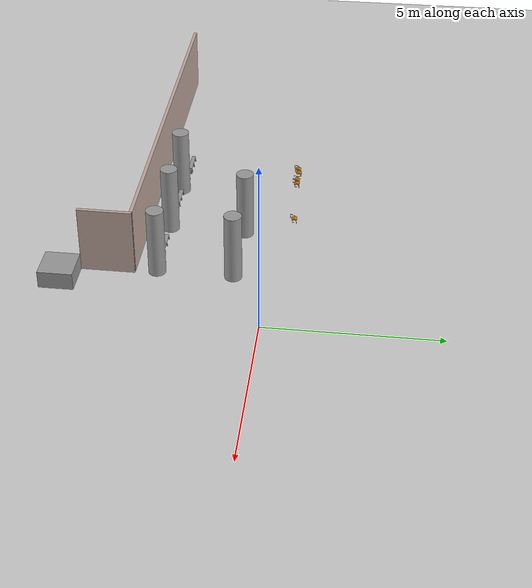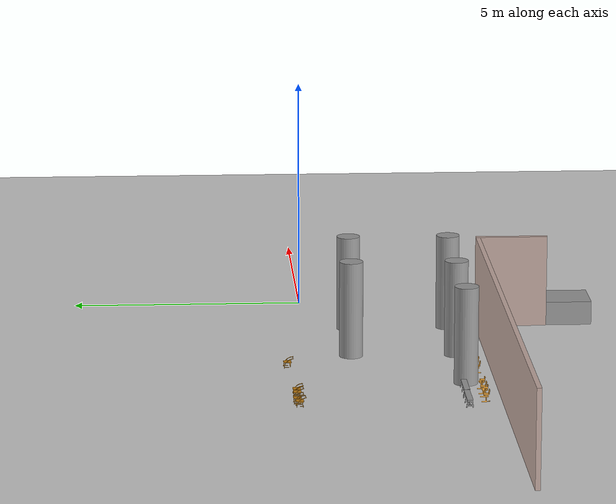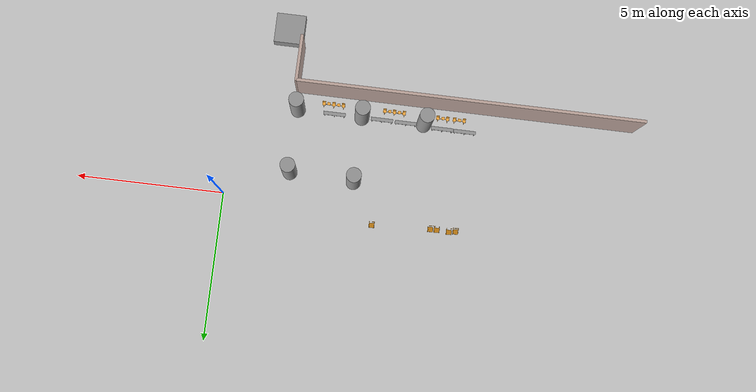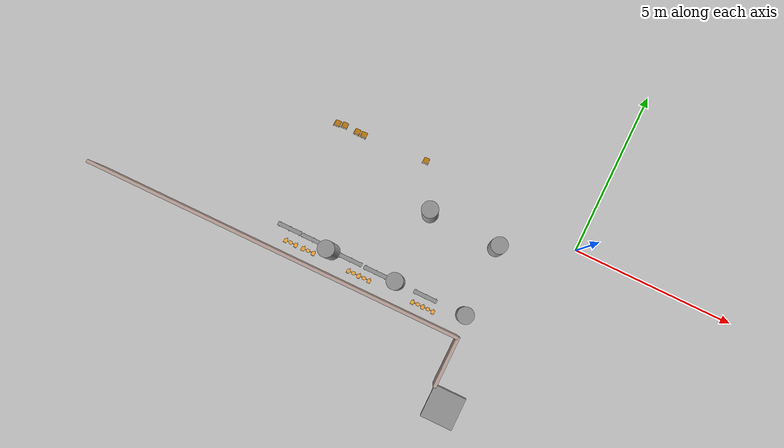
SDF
<sdf version="1.6">
 <world name="default">
  <model name="ground_plane">
   <static>1</static>
   <link name="link">
    <collision name="collision">
     <geometry><plane><normal>0 0 1</normal><size>100 100</size></plane></geometry>
     <surface>
      <contact><collide_bitmask>65535</collide_bitmask></contact>
      <friction><ode><mu>100</mu><mu2>50</mu2></ode></friction>
     </surface>
    </collision>
    <visual name="visual">
     <cast_shadows>0</cast_shadows>
     <geometry><plane><normal>0 0 1</normal><size>100 100</size></plane></geometry>
     <material>
      <script><uri>file://media/materials/scripts/gazebo.material</uri><name>Gazebo/Grey</name></script>
     </material>
    </visual>
   </link>
  </model>
  <model name="gedung_p">
   <pose>2.96636 -2.09069 0 0 -0 0</pose>
   <link name="Wall_199">
    <collision name="Wall_199_Collision">
     <geometry><box><size>1.55413 0.1 2</size></box></geometry>
     <pose>0 0 1 0 -0 0</pose>
    </collision>
    <visual name="Wall_199_Visual">
     <pose>0 0 1 0 -0 0</pose>
     <geometry><box><size>1.55413 0.1 2</size></box></geometry>
     <material>
      <script><uri>file://media/materials/scripts/gazebo.material</uri><name>Gazebo/Grey</name></script>
      <ambient>0.760784 0.662745 0.627451 1</ambient>
     </material>
     <meta><layer>0</layer></meta>
    </visual>
    <pose>-5.05601 -2.44719 0 0 -0 1.56461</pose>
   </link>
   <link name="Wall_227">
    <collision name="Wall_227_Collision">
     <geometry><box><size>0.320792 0.2 2</size></box></geometry>
     <pose>0 0 1 0 -0 0</pose>
    </collision>
    <visual name="Wall_227_Visual">
     <pose>0 0 1 0 -0 0</pose>
     <geometry><box><size>0.320792 0.2 2</size></box></geometry>
     <material>
      <script><uri>file://media/materials/scripts/gazebo.material</uri><name>Gazebo/Grey</name></script>
      <ambient>0.760784 0.662745 0.627451 1</ambient>
     </material>
     <meta><layer>0</layer></meta>
    </visual>
    <pose>-9.46431 -1.01152 0 0 -0 0.045423</pose>
   </link>
   <link name="Wall_229">
    <collision name="Wall_229_Collision">
     <geometry><box><size>0.342272 0.2 2</size></box></geometry>
     <pose>0 0 1 0 -0 0</pose>
    </collision>
    <visual name="Wall_229_Visual">
     <pose>0 0 1 0 -0 0</pose>
     <geometry><box><size>0.342272 0.2 2</size></box></geometry>
     <material>
      <script><uri>file://media/materials/scripts/gazebo.material</uri><name>Gazebo/Grey</name></script>
      <ambient>0.760784 0.662745 0.627451 1</ambient>
     </material>
     <meta><layer>0</layer></meta>
    </visual>
    <pose>-7.30446 -1.02245 0 0 -0 -3.10315</pose>
   </link>
   <link name="Wall_231">
    <collision name="Wall_231_Collision">
     <geometry><box><size>0.358571 0.2 2</size></box></geometry>
     <pose>0 0 1 0 -0 0</pose>
    </collision>
    <visual name="Wall_231_Visual">
     <pose>0 0 1 0 -0 0</pose>
     <geometry><box><size>0.358571 0.2 2</size></box></geometry>
     <material>
      <script><uri>file://media/materials/scripts/gazebo.material</uri><name>Gazebo/Grey</name></script>
      <ambient>0.760784 0.662745 0.627451 1</ambient>
     </material>
     <meta><layer>0</layer></meta>
    </visual>
    <pose>-5.16375 -1.01425 0 0 -0 3.14159</pose>
   </link>
   <link name="Wall_268">
    <collision name="Wall_268_Collision">
     <geometry><box><size>0.333889 0.2 2</size></box></geometry>
     <pose>0 0 1 0 -0 0</pose>
    </collision>
    <visual name="Wall_268_Visual">
     <pose>0 0 1 0 -0 0</pose>
     <geometry><box><size>0.333889 0.2 2</size></box></geometry>
     <material>
      <script><uri>file://media/materials/scripts/gazebo.material</uri><name>Gazebo/Grey</name></script>
      <ambient>0.760784 0.662745 0.627451 1</ambient>
     </material>
     <meta><layer>0</layer></meta>
    </visual>
    <pose>-7.29702 1.12605 0 0 -0 3.14159</pose>
   </link>
   <link name="Wall_270">
    <collision name="Wall_270_Collision">
     <geometry><box><size>0.31516 0.2 2</size></box></geometry>
     <pose>0 0 1 0 -0 0</pose>
    </collision>
    <visual name="Wall_270_Visual">
     <pose>0 0 1 0 -0 0</pose>
     <geometry><box><size>0.31516 0.2 2</size></box></geometry>
     <material>
      <script><uri>file://media/materials/scripts/gazebo.material</uri><name>Gazebo/Grey</name></script>
      <ambient>0.760784 0.662745 0.627451 1</ambient>
     </material>
     <meta><layer>0</layer></meta>
    </visual>
    <pose>-5.1548 1.12127 0 0 -0 0.083141</pose>
   </link>
   <link name="Wall_6">
    <collision name="Wall_6_Collision">
     <geometry><box><size>11.5 0.1 2</size></box></geometry>
     <pose>0 0 1 0 -0 0</pose>
    </collision>
    <visual name="Wall_6_Visual">
     <pose>0 0 1 0 -0 0</pose>
     <geometry><box><size>11.5 0.1 2</size></box></geometry>
     <material>
      <script><uri>file://media/materials/scripts/gazebo.material</uri><name>Gazebo/Grey</name></script>
      <ambient>0.760784 0.662745 0.627451 1</ambient>
     </material>
     <meta><layer>0</layer></meta>
    </visual>
    <pose>-10.8105 -1.71019 0 0 -0 0</pose>
   </link>
   <static>1</static>
  </model>
  <model name="tiang_besar_5">
   <link name="link_0">
    <inertial>
     <mass>1</mass>
     <inertia>
      <ixx>0.166667</ixx>
      <ixy>0</ixy>
      <ixz>0</ixz>
      <iyy>0.166667</iyy>
      <iyz>0</iyz>
      <izz>0.166667</izz>
     </inertia>
    </inertial>
    <pose>0.080543 -0.031124 0 0 -0 0</pose>
    <visual name="visual">
     <geometry>
      <mesh><uri>/home/thardi/Gazebo Objek/cylinder sedang.dae</uri><scale>1 1 1.15</scale></mesh>
     </geometry>
     <material>
      <lighting>1</lighting>
      <script><uri>file://media/materials/scripts/gazebo.material</uri><name>Gazebo/Grey</name></script>
      <shader type="vertex"><normal_map>__default__</normal_map></shader>
      <ambient>0.3 0.3 0.3 1</ambient>
      <diffuse>0.7 0.7 0.7 1</diffuse>
      <specular>0.01 0.01 0.01 1</specular>
      <emissive>0 0 0 1</emissive>
     </material>
    </visual>
    <collision name="collision">
     <geometry>
      <mesh><uri>/home/thardi/Gazebo Objek/cylinder sedang.dae</uri><scale>1 1 1.15</scale></mesh>
     </geometry>
     <surface>
      <friction>
       <ode><mu>1.15</mu><mu2>1</mu2><fdir1>0 0 0</fdir1><slip1>0</slip1><slip2>0</slip2></ode>
       <torsional>
        <coefficient>1</coefficient>
        <patch_radius>0</patch_radius>
        <surface_radius>0</surface_radius>
        <use_patch_radius>1</use_patch_radius>
        <ode><slip>0</slip></ode>
       </torsional>
      </friction>
      <bounce><restitution_coefficient>0</restitution_coefficient><threshold>1e+06</threshold></bounce>
      <contact>
       <collide_without_contact>0</collide_without_contact>
       <collide_without_contact_bitmask>1</collide_without_contact_bitmask>
       <collide_bitmask>1</collide_bitmask>
       <ode>
        <soft_cfm>0</soft_cfm>
        <soft_erp>0.2</soft_erp>
        <kp>1e+13</kp>
        <kd>1</kd>
        <max_vel>0.01</max_vel>
        <min_depth>0</min_depth>
       </ode>
       <bullet>
        <split_impulse>1</split_impulse>
        <split_impulse_penetration_threshold>-0.01</split_impulse_penetration_threshold>
        <soft_cfm>0</soft_cfm>
        <soft_erp>0.2</soft_erp>
        <kp>1e+13</kp>
        <kd>1</kd>
       </bullet>
      </contact>
     </surface>
    </collision>
   </link>
   <static>1</static>
   <pose>-6.55988 -3.10666 0 0 -0 0</pose>
  </model>
  <model name="tiang_besar_15">
   <link name="link_0">
    <inertial>
     <mass>1</mass>
     <inertia>
      <ixx>0.166667</ixx>
      <ixy>0</ixy>
      <ixz>0</ixz>
      <iyy>0.166667</iyy>
      <iyz>0</iyz>
      <izz>0.166667</izz>
     </inertia>
    </inertial>
    <pose>0.080543 -0.031124 0 0 -0 0</pose>
    <visual name="visual">
     <geometry>
      <mesh><uri>/home/thardi/Gazebo Objek/cylinder sedang.dae</uri><scale>1 1 1.15</scale></mesh>
     </geometry>
     <material>
      <lighting>1</lighting>
      <script><uri>file://media/materials/scripts/gazebo.material</uri><name>Gazebo/Grey</name></script>
      <shader type="vertex"><normal_map>__default__</normal_map></shader>
      <ambient>0.3 0.3 0.3 1</ambient>
      <diffuse>0.7 0.7 0.7 1</diffuse>
      <specular>0.01 0.01 0.01 1</specular>
      <emissive>0 0 0 1</emissive>
     </material>
    </visual>
    <collision name="collision">
     <geometry>
      <mesh><uri>/home/thardi/Gazebo Objek/cylinder sedang.dae</uri><scale>1 1 1.15</scale></mesh>
     </geometry>
     <surface>
      <friction>
       <ode><mu>1.15</mu><mu2>1</mu2><fdir1>0 0 0</fdir1><slip1>0</slip1><slip2>0</slip2></ode>
       <torsional>
        <coefficient>1</coefficient>
        <patch_radius>0</patch_radius>
        <surface_radius>0</surface_radius>
        <use_patch_radius>1</use_patch_radius>
        <ode><slip>0</slip></ode>
       </torsional>
      </friction>
      <bounce><restitution_coefficient>0</restitution_coefficient><threshold>1e+06</threshold></bounce>
      <contact>
       <collide_without_contact>0</collide_without_contact>
       <collide_without_contact_bitmask>1</collide_without_contact_bitmask>
       <collide_bitmask>1</collide_bitmask>
       <ode>
        <soft_cfm>0</soft_cfm>
        <soft_erp>0.2</soft_erp>
        <kp>1e+13</kp>
        <kd>1</kd>
        <max_vel>0.01</max_vel>
        <min_depth>0</min_depth>
       </ode>
       <bullet>
        <split_impulse>1</split_impulse>
        <split_impulse_penetration_threshold>-0.01</split_impulse_penetration_threshold>
        <soft_cfm>0</soft_cfm>
        <soft_erp>0.2</soft_erp>
        <kp>1e+13</kp>
        <kd>1</kd>
       </bullet>
      </contact>
     </surface>
    </collision>
   </link>
   <static>1</static>
   <pose>-4.44346 -3.09441 0 0 -0 0</pose>
  </model>
  <model name="tiang_besar_16">
   <link name="link_0">
    <inertial>
     <mass>1</mass>
     <inertia>
      <ixx>0.166667</ixx>
      <ixy>0</ixy>
      <ixz>0</ixz>
      <iyy>0.166667</iyy>
      <iyz>0</iyz>
      <izz>0.166667</izz>
     </inertia>
    </inertial>
    <pose>0.080543 -0.031124 0 0 -0 0</pose>
    <visual name="visual">
     <geometry>
      <mesh><uri>/home/thardi/Gazebo Objek/cylinder sedang.dae</uri><scale>1 1 1.15</scale></mesh>
     </geometry>
     <material>
      <lighting>1</lighting>
      <script><uri>file://media/materials/scripts/gazebo.material</uri><name>Gazebo/Grey</name></script>
      <shader type="vertex"><normal_map>__default__</normal_map></shader>
      <ambient>0.3 0.3 0.3 1</ambient>
      <diffuse>0.7 0.7 0.7 1</diffuse>
      <specular>0.01 0.01 0.01 1</specular>
      <emissive>0 0 0 1</emissive>
     </material>
    </visual>
    <collision name="collision">
     <geometry>
      <mesh><uri>/home/thardi/Gazebo Objek/cylinder sedang.dae</uri><scale>1 1 1.15</scale></mesh>
     </geometry>
     <surface>
      <friction>
       <ode><mu>1.15</mu><mu2>1</mu2><fdir1>0 0 0</fdir1><slip1>0</slip1><slip2>0</slip2></ode>
       <torsional>
        <coefficient>1</coefficient>
        <patch_radius>0</patch_radius>
        <surface_radius>0</surface_radius>
        <use_patch_radius>1</use_patch_radius>
        <ode><slip>0</slip></ode>
       </torsional>
      </friction>
      <bounce><restitution_coefficient>0</restitution_coefficient><threshold>1e+06</threshold></bounce>
      <contact>
       <collide_without_contact>0</collide_without_contact>
       <collide_without_contact_bitmask>1</collide_without_contact_bitmask>
       <collide_bitmask>1</collide_bitmask>
       <ode>
        <soft_cfm>0</soft_cfm>
        <soft_erp>0.2</soft_erp>
        <kp>1e+13</kp>
        <kd>1</kd>
        <max_vel>0.01</max_vel>
        <min_depth>0</min_depth>
       </ode>
       <bullet>
        <split_impulse>1</split_impulse>
        <split_impulse_penetration_threshold>-0.01</split_impulse_penetration_threshold>
        <soft_cfm>0</soft_cfm>
        <soft_erp>0.2</soft_erp>
        <kp>1e+13</kp>
        <kd>1</kd>
       </bullet>
      </contact>
     </surface>
    </collision>
   </link>
   <static>1</static>
   <pose>-4.41638 -0.867013 0 0 -0 0</pose>
  </model>
  <model name="tiang_besar_17">
   <link name="link_0">
    <inertial>
     <mass>1</mass>
     <inertia>
      <ixx>0.166667</ixx>
      <ixy>0</ixy>
      <ixz>0</ixz>
      <iyy>0.166667</iyy>
      <iyz>0</iyz>
      <izz>0.166667</izz>
     </inertia>
    </inertial>
    <pose>0.080543 -0.031124 0 0 -0 0</pose>
    <visual name="visual">
     <geometry>
      <mesh><uri>/home/thardi/Gazebo Objek/cylinder sedang.dae</uri><scale>1 1 1.15</scale></mesh>
     </geometry>
     <material>
      <lighting>1</lighting>
      <script><uri>file://media/materials/scripts/gazebo.material</uri><name>Gazebo/Grey</name></script>
      <shader type="vertex"><normal_map>__default__</normal_map></shader>
      <ambient>0.3 0.3 0.3 1</ambient>
      <diffuse>0.7 0.7 0.7 1</diffuse>
      <specular>0.01 0.01 0.01 1</specular>
      <emissive>0 0 0 1</emissive>
     </material>
    </visual>
    <collision name="collision">
     <geometry>
      <mesh><uri>/home/thardi/Gazebo Objek/cylinder sedang.dae</uri><scale>1 1 1.15</scale></mesh>
     </geometry>
     <surface>
      <friction>
       <ode><mu>1.15</mu><mu2>1</mu2><fdir1>0 0 0</fdir1><slip1>0</slip1><slip2>0</slip2></ode>
       <torsional>
        <coefficient>1</coefficient>
        <patch_radius>0</patch_radius>
        <surface_radius>0</surface_radius>
        <use_patch_radius>1</use_patch_radius>
        <ode><slip>0</slip></ode>
       </torsional>
      </friction>
      <bounce><restitution_coefficient>0</restitution_coefficient><threshold>1e+06</threshold></bounce>
      <contact>
       <collide_without_contact>0</collide_without_contact>
       <collide_without_contact_bitmask>1</collide_without_contact_bitmask>
       <collide_bitmask>1</collide_bitmask>
       <ode>
        <soft_cfm>0</soft_cfm>
        <soft_erp>0.2</soft_erp>
        <kp>1e+13</kp>
        <kd>1</kd>
        <max_vel>0.01</max_vel>
        <min_depth>0</min_depth>
       </ode>
       <bullet>
        <split_impulse>1</split_impulse>
        <split_impulse_penetration_threshold>-0.01</split_impulse_penetration_threshold>
        <soft_cfm>0</soft_cfm>
        <soft_erp>0.2</soft_erp>
        <kp>1e+13</kp>
        <kd>1</kd>
       </bullet>
      </contact>
     </surface>
    </collision>
   </link>
   <static>1</static>
   <pose>-2.23957 -0.938197 0 0 -0 0</pose>
  </model>
  <model name="tiang_besar_18">
   <link name="link_0">
    <inertial>
     <mass>1</mass>
     <inertia>
      <ixx>0.166667</ixx>
      <ixy>0</ixy>
      <ixz>0</ixz>
      <iyy>0.166667</iyy>
      <iyz>0</iyz>
      <izz>0.166667</izz>
     </inertia>
    </inertial>
    <pose>0.080543 -0.031124 0 0 -0 0</pose>
    <visual name="visual">
     <geometry>
      <mesh><uri>/home/thardi/Gazebo Objek/cylinder sedang.dae</uri><scale>1 1 1.15</scale></mesh>
     </geometry>
     <material>
      <lighting>1</lighting>
      <script><uri>file://media/materials/scripts/gazebo.material</uri><name>Gazebo/Grey</name></script>
      <shader type="vertex"><normal_map>__default__</normal_map></shader>
      <ambient>0.3 0.3 0.3 1</ambient>
      <diffuse>0.7 0.7 0.7 1</diffuse>
      <specular>0.01 0.01 0.01 1</specular>
      <emissive>0 0 0 1</emissive>
     </material>
    </visual>
    <collision name="collision">
     <geometry>
      <mesh><uri>/home/thardi/Gazebo Objek/cylinder sedang.dae</uri><scale>1 1 1.15</scale></mesh>
     </geometry>
     <surface>
      <friction>
       <ode><mu>1.15</mu><mu2>1</mu2><fdir1>0 0 0</fdir1><slip1>0</slip1><slip2>0</slip2></ode>
       <torsional>
        <coefficient>1</coefficient>
        <patch_radius>0</patch_radius>
        <surface_radius>0</surface_radius>
        <use_patch_radius>1</use_patch_radius>
        <ode><slip>0</slip></ode>
       </torsional>
      </friction>
      <bounce><restitution_coefficient>0</restitution_coefficient><threshold>1e+06</threshold></bounce>
      <contact>
       <collide_without_contact>0</collide_without_contact>
       <collide_without_contact_bitmask>1</collide_without_contact_bitmask>
       <collide_bitmask>1</collide_bitmask>
       <ode>
        <soft_cfm>0</soft_cfm>
        <soft_erp>0.2</soft_erp>
        <kp>1e+13</kp>
        <kd>1</kd>
        <max_vel>0.01</max_vel>
        <min_depth>0</min_depth>
       </ode>
       <bullet>
        <split_impulse>1</split_impulse>
        <split_impulse_penetration_threshold>-0.01</split_impulse_penetration_threshold>
        <soft_cfm>0</soft_cfm>
        <soft_erp>0.2</soft_erp>
        <kp>1e+13</kp>
        <kd>1</kd>
       </bullet>
      </contact>
     </surface>
    </collision>
   </link>
   <static>1</static>
   <pose>-2.24882 -3.1076 0 0 -0 0</pose>
  </model>
  <model name="kursi_putih_2">
   <link name="link_3">
    <inertial>
     <mass>1</mass>
     <inertia>
      <ixx>0.166667</ixx>
      <ixy>0</ixy>
      <ixz>0</ixz>
      <iyy>0.166667</iyy>
      <iyz>0</iyz>
      <izz>0.166667</izz>
     </inertia>
    </inertial>
    <visual name="visual">
     <geometry>
      <mesh><uri>/home/thardi/Gazebo Objek/kursi putih.dae</uri><scale>0.15 0.15 0.15</scale></mesh>
     </geometry>
     <material>
      <lighting>1</lighting>
      <script><uri>file://media/materials/scripts/gazebo.material</uri><name>Gazebo/Grey</name></script>
      <shader type="vertex"><normal_map>__default__</normal_map></shader>
      <ambient>1 1 1 1</ambient>
      <diffuse>1 1 1 1</diffuse>
      <specular>1 1 1 1</specular>
      <emissive>1 1 1 1</emissive>
     </material>
    </visual>
    <collision name="collision">
     <geometry>
      <mesh><uri>/home/thardi/Gazebo Objek/kursi putih.dae</uri><scale>0.15 0.15 0.15</scale></mesh>
     </geometry>
     <surface>
      <friction>
       <ode><mu>1</mu><mu2>1</mu2><fdir1>0 0 0</fdir1><slip1>0</slip1><slip2>0</slip2></ode>
       <torsional>
        <coefficient>1</coefficient>
        <patch_radius>0</patch_radius>
        <surface_radius>0</surface_radius>
        <use_patch_radius>1</use_patch_radius>
        <ode><slip>0</slip></ode>
       </torsional>
      </friction>
      <bounce><restitution_coefficient>0</restitution_coefficient><threshold>1e+06</threshold></bounce>
      <contact>
       <collide_without_contact>0</collide_without_contact>
       <collide_without_contact_bitmask>1</collide_without_contact_bitmask>
       <collide_bitmask>1</collide_bitmask>
       <ode>
        <soft_cfm>0</soft_cfm>
        <soft_erp>0.2</soft_erp>
        <kp>1e+13</kp>
        <kd>1</kd>
        <max_vel>0.01</max_vel>
        <min_depth>0</min_depth>
       </ode>
       <bullet>
        <split_impulse>1</split_impulse>
        <split_impulse_penetration_threshold>-0.01</split_impulse_penetration_threshold>
        <soft_cfm>0</soft_cfm>
        <soft_erp>0.2</soft_erp>
        <kp>1e+13</kp>
        <kd>1</kd>
       </bullet>
      </contact>
     </surface>
    </collision>
   </link>
   <static>1</static>
   <pose>-7.88934 -3.0566 0 0 -0 0</pose>
  </model>
  <model name="kursi_putih_3">
   <link name="link_3">
    <inertial>
     <mass>1</mass>
     <inertia>
      <ixx>0.166667</ixx>
      <ixy>0</ixy>
      <ixz>0</ixz>
      <iyy>0.166667</iyy>
      <iyz>0</iyz>
      <izz>0.166667</izz>
     </inertia>
    </inertial>
    <visual name="visual">
     <geometry>
      <mesh><uri>/home/thardi/Gazebo Objek/kursi putih.dae</uri><scale>0.15 0.15 0.15</scale></mesh>
     </geometry>
     <material>
      <lighting>1</lighting>
      <script><uri>file://media/materials/scripts/gazebo.material</uri><name>Gazebo/Grey</name></script>
      <shader type="vertex"><normal_map>__default__</normal_map></shader>
      <ambient>1 1 1 1</ambient>
      <diffuse>1 1 1 1</diffuse>
      <specular>1 1 1 1</specular>
      <emissive>1 1 1 1</emissive>
     </material>
    </visual>
    <collision name="collision">
     <geometry>
      <mesh><uri>/home/thardi/Gazebo Objek/kursi putih.dae</uri><scale>0.15 0.15 0.15</scale></mesh>
     </geometry>
     <surface>
      <friction>
       <ode><mu>1</mu><mu2>1</mu2><fdir1>0 0 0</fdir1><slip1>0</slip1><slip2>0</slip2></ode>
       <torsional>
        <coefficient>1</coefficient>
        <patch_radius>0</patch_radius>
        <surface_radius>0</surface_radius>
        <use_patch_radius>1</use_patch_radius>
        <ode><slip>0</slip></ode>
       </torsional>
      </friction>
      <bounce><restitution_coefficient>0</restitution_coefficient><threshold>1e+06</threshold></bounce>
      <contact>
       <collide_without_contact>0</collide_without_contact>
       <collide_without_contact_bitmask>1</collide_without_contact_bitmask>
       <collide_bitmask>1</collide_bitmask>
       <ode>
        <soft_cfm>0</soft_cfm>
        <soft_erp>0.2</soft_erp>
        <kp>1e+13</kp>
        <kd>1</kd>
        <max_vel>0.01</max_vel>
        <min_depth>0</min_depth>
       </ode>
       <bullet>
        <split_impulse>1</split_impulse>
        <split_impulse_penetration_threshold>-0.01</split_impulse_penetration_threshold>
        <soft_cfm>0</soft_cfm>
        <soft_erp>0.2</soft_erp>
        <kp>1e+13</kp>
        <kd>1</kd>
       </bullet>
      </contact>
     </surface>
    </collision>
   </link>
   <static>1</static>
   <pose>-7.12226 -3.06473 0 0 -0 0</pose>
  </model>
  <model name="kursi_putih_4">
   <link name="link_3">
    <inertial>
     <mass>1</mass>
     <inertia>
      <ixx>0.166667</ixx>
      <ixy>0</ixy>
      <ixz>0</ixz>
      <iyy>0.166667</iyy>
      <iyz>0</iyz>
      <izz>0.166667</izz>
     </inertia>
    </inertial>
    <visual name="visual">
     <geometry>
      <mesh><uri>/home/thardi/Gazebo Objek/kursi putih.dae</uri><scale>0.15 0.15 0.15</scale></mesh>
     </geometry>
     <material>
      <lighting>1</lighting>
      <script><uri>file://media/materials/scripts/gazebo.material</uri><name>Gazebo/Grey</name></script>
      <shader type="vertex"><normal_map>__default__</normal_map></shader>
      <ambient>1 1 1 1</ambient>
      <diffuse>1 1 1 1</diffuse>
      <specular>1 1 1 1</specular>
      <emissive>1 1 1 1</emissive>
     </material>
    </visual>
    <collision name="collision">
     <geometry>
      <mesh><uri>/home/thardi/Gazebo Objek/kursi putih.dae</uri><scale>0.15 0.15 0.15</scale></mesh>
     </geometry>
     <surface>
      <friction>
       <ode><mu>1</mu><mu2>1</mu2><fdir1>0 0 0</fdir1><slip1>0</slip1><slip2>0</slip2></ode>
       <torsional>
        <coefficient>1</coefficient>
        <patch_radius>0</patch_radius>
        <surface_radius>0</surface_radius>
        <use_patch_radius>1</use_patch_radius>
        <ode><slip>0</slip></ode>
       </torsional>
      </friction>
      <bounce><restitution_coefficient>0</restitution_coefficient><threshold>1e+06</threshold></bounce>
      <contact>
       <collide_without_contact>0</collide_without_contact>
       <collide_without_contact_bitmask>1</collide_without_contact_bitmask>
       <collide_bitmask>1</collide_bitmask>
       <ode>
        <soft_cfm>0</soft_cfm>
        <soft_erp>0.2</soft_erp>
        <kp>1e+13</kp>
        <kd>1</kd>
        <max_vel>0.01</max_vel>
        <min_depth>0</min_depth>
       </ode>
       <bullet>
        <split_impulse>1</split_impulse>
        <split_impulse_penetration_threshold>-0.01</split_impulse_penetration_threshold>
        <soft_cfm>0</soft_cfm>
        <soft_erp>0.2</soft_erp>
        <kp>1e+13</kp>
        <kd>1</kd>
       </bullet>
      </contact>
     </surface>
    </collision>
   </link>
   <static>1</static>
   <pose>-5.86954 -3.12067 0 0 -0 0</pose>
  </model>
  <model name="kursi_putih_5">
   <link name="link_3">
    <inertial>
     <mass>1</mass>
     <inertia>
      <ixx>0.166667</ixx>
      <ixy>0</ixy>
      <ixz>0</ixz>
      <iyy>0.166667</iyy>
      <iyz>0</iyz>
      <izz>0.166667</izz>
     </inertia>
    </inertial>
    <visual name="visual">
     <geometry>
      <mesh><uri>/home/thardi/Gazebo Objek/kursi putih.dae</uri><scale>0.15 0.15 0.15</scale></mesh>
     </geometry>
     <material>
      <lighting>1</lighting>
      <script><uri>file://media/materials/scripts/gazebo.material</uri><name>Gazebo/Grey</name></script>
      <shader type="vertex"><normal_map>__default__</normal_map></shader>
      <ambient>1 1 1 1</ambient>
      <diffuse>1 1 1 1</diffuse>
      <specular>1 1 1 1</specular>
      <emissive>1 1 1 1</emissive>
     </material>
    </visual>
    <collision name="collision">
     <geometry>
      <mesh><uri>/home/thardi/Gazebo Objek/kursi putih.dae</uri><scale>0.15 0.15 0.15</scale></mesh>
     </geometry>
     <surface>
      <friction>
       <ode><mu>1</mu><mu2>1</mu2><fdir1>0 0 0</fdir1><slip1>0</slip1><slip2>0</slip2></ode>
       <torsional>
        <coefficient>1</coefficient>
        <patch_radius>0</patch_radius>
        <surface_radius>0</surface_radius>
        <use_patch_radius>1</use_patch_radius>
        <ode><slip>0</slip></ode>
       </torsional>
      </friction>
      <bounce><restitution_coefficient>0</restitution_coefficient><threshold>1e+06</threshold></bounce>
      <contact>
       <collide_without_contact>0</collide_without_contact>
       <collide_without_contact_bitmask>1</collide_without_contact_bitmask>
       <collide_bitmask>1</collide_bitmask>
       <ode>
        <soft_cfm>0</soft_cfm>
        <soft_erp>0.2</soft_erp>
        <kp>1e+13</kp>
        <kd>1</kd>
        <max_vel>0.01</max_vel>
        <min_depth>0</min_depth>
       </ode>
       <bullet>
        <split_impulse>1</split_impulse>
        <split_impulse_penetration_threshold>-0.01</split_impulse_penetration_threshold>
        <soft_cfm>0</soft_cfm>
        <soft_erp>0.2</soft_erp>
        <kp>1e+13</kp>
        <kd>1</kd>
       </bullet>
      </contact>
     </surface>
    </collision>
   </link>
   <static>1</static>
   <pose>-5.04935 -3.13192 0 0 -0 0</pose>
  </model>
  <model name="kursi_putih_6">
   <link name="link_3">
    <inertial>
     <mass>1</mass>
     <inertia>
      <ixx>0.166667</ixx>
      <ixy>0</ixy>
      <ixz>0</ixz>
      <iyy>0.166667</iyy>
      <iyz>0</iyz>
      <izz>0.166667</izz>
     </inertia>
    </inertial>
    <visual name="visual">
     <geometry>
      <mesh><uri>/home/thardi/Gazebo Objek/kursi putih.dae</uri><scale>0.15 0.15 0.15</scale></mesh>
     </geometry>
     <material>
      <lighting>1</lighting>
      <script><uri>file://media/materials/scripts/gazebo.material</uri><name>Gazebo/Grey</name></script>
      <shader type="vertex"><normal_map>__default__</normal_map></shader>
      <ambient>1 1 1 1</ambient>
      <diffuse>1 1 1 1</diffuse>
      <specular>1 1 1 1</specular>
      <emissive>1 1 1 1</emissive>
     </material>
    </visual>
    <collision name="collision">
     <geometry>
      <mesh><uri>/home/thardi/Gazebo Objek/kursi putih.dae</uri><scale>0.15 0.15 0.15</scale></mesh>
     </geometry>
     <surface>
      <friction>
       <ode><mu>1</mu><mu2>1</mu2><fdir1>0 0 0</fdir1><slip1>0</slip1><slip2>0</slip2></ode>
       <torsional>
        <coefficient>1</coefficient>
        <patch_radius>0</patch_radius>
        <surface_radius>0</surface_radius>
        <use_patch_radius>1</use_patch_radius>
        <ode><slip>0</slip></ode>
       </torsional>
      </friction>
      <bounce><restitution_coefficient>0</restitution_coefficient><threshold>1e+06</threshold></bounce>
      <contact>
       <collide_without_contact>0</collide_without_contact>
       <collide_without_contact_bitmask>1</collide_without_contact_bitmask>
       <collide_bitmask>1</collide_bitmask>
       <ode>
        <soft_cfm>0</soft_cfm>
        <soft_erp>0.2</soft_erp>
        <kp>1e+13</kp>
        <kd>1</kd>
        <max_vel>0.01</max_vel>
        <min_depth>0</min_depth>
       </ode>
       <bullet>
        <split_impulse>1</split_impulse>
        <split_impulse_penetration_threshold>-0.01</split_impulse_penetration_threshold>
        <soft_cfm>0</soft_cfm>
        <soft_erp>0.2</soft_erp>
        <kp>1e+13</kp>
        <kd>1</kd>
       </bullet>
      </contact>
     </surface>
    </collision>
   </link>
   <static>1</static>
   <pose>-3.42111 -3.13883 0 0 -0 0</pose>
  </model>
  <model name="kursi_sambung_3">
   <link name="link_5">
    <inertial>
     <mass>1</mass>
     <inertia>
      <ixx>0.166667</ixx>
      <ixy>0</ixy>
      <ixz>0</ixz>
      <iyy>0.166667</iyy>
      <iyz>0</iyz>
      <izz>0.166667</izz>
     </inertia>
    </inertial>
    <visual name="visual">
     <geometry>
      <mesh><uri>/home/thardi/Gazebo Objek/kursi sambung 3.dae</uri><scale>0.07 0.07 0.07</scale></mesh>
     </geometry>
     <material>
      <lighting>1</lighting>
      <script><uri>file://media/materials/scripts/gazebo.material</uri><name>Gazebo/Grey</name></script>
      <shader type="vertex"><normal_map>__default__</normal_map></shader>
      <ambient>0.988 0.686 0.243 1</ambient>
      <diffuse>0.988 0.686 0.243 1</diffuse>
      <specular>0.988 0.686 0.243 1</specular>
      <emissive>0.988 0.686 0.243 1</emissive>
     </material>
    </visual>
    <collision name="collision">
     <geometry>
      <mesh><uri>/home/thardi/Gazebo Objek/kursi sambung 3.dae</uri><scale>0.07 0.07 0.07</scale></mesh>
     </geometry>
     <surface>
      <friction>
       <ode><mu>1</mu><mu2>1</mu2><fdir1>0 0 0</fdir1><slip1>0</slip1><slip2>0</slip2></ode>
       <torsional>
        <coefficient>1</coefficient>
        <patch_radius>0</patch_radius>
        <surface_radius>0</surface_radius>
        <use_patch_radius>1</use_patch_radius>
        <ode><slip>0</slip></ode>
       </torsional>
      </friction>
      <bounce><restitution_coefficient>0</restitution_coefficient><threshold>1e+06</threshold></bounce>
      <contact>
       <collide_without_contact>0</collide_without_contact>
       <collide_without_contact_bitmask>1</collide_without_contact_bitmask>
       <collide_bitmask>1</collide_bitmask>
       <ode>
        <soft_cfm>0</soft_cfm>
        <soft_erp>0.2</soft_erp>
        <kp>1e+13</kp>
        <kd>1</kd>
        <max_vel>0.01</max_vel>
        <min_depth>0</min_depth>
       </ode>
       <bullet>
        <split_impulse>1</split_impulse>
        <split_impulse_penetration_threshold>-0.01</split_impulse_penetration_threshold>
        <soft_cfm>0</soft_cfm>
        <soft_erp>0.2</soft_erp>
        <kp>1e+13</kp>
        <kd>1</kd>
       </bullet>
      </contact>
     </surface>
    </collision>
   </link>
   <static>1</static>
   <pose>-3.74591 -3.35812 0 0 -0 0</pose>
  </model>
  <model name="kursi_sambung_3_0">
   <link name="link_5">
    <inertial>
     <mass>1</mass>
     <inertia>
      <ixx>0.166667</ixx>
      <ixy>0</ixy>
      <ixz>0</ixz>
      <iyy>0.166667</iyy>
      <iyz>0</iyz>
      <izz>0.166667</izz>
     </inertia>
    </inertial>
    <visual name="visual">
     <geometry>
      <mesh><uri>/home/thardi/Gazebo Objek/kursi sambung 3.dae</uri><scale>0.07 0.07 0.07</scale></mesh>
     </geometry>
     <material>
      <lighting>1</lighting>
      <script><uri>file://media/materials/scripts/gazebo.material</uri><name>Gazebo/Grey</name></script>
      <shader type="vertex"><normal_map>__default__</normal_map></shader>
      <ambient>0.988 0.686 0.243 1</ambient>
      <diffuse>0.988 0.686 0.243 1</diffuse>
      <specular>0.988 0.686 0.243 1</specular>
      <emissive>0.988 0.686 0.243 1</emissive>
     </material>
    </visual>
    <collision name="collision">
     <geometry>
      <mesh><uri>/home/thardi/Gazebo Objek/kursi sambung 3.dae</uri><scale>0.07 0.07 0.07</scale></mesh>
     </geometry>
     <surface>
      <friction>
       <ode><mu>1</mu><mu2>1</mu2><fdir1>0 0 0</fdir1><slip1>0</slip1><slip2>0</slip2></ode>
       <torsional>
        <coefficient>1</coefficient>
        <patch_radius>0</patch_radius>
        <surface_radius>0</surface_radius>
        <use_patch_radius>1</use_patch_radius>
        <ode><slip>0</slip></ode>
       </torsional>
      </friction>
      <bounce><restitution_coefficient>0</restitution_coefficient><threshold>1e+06</threshold></bounce>
      <contact>
       <collide_without_contact>0</collide_without_contact>
       <collide_without_contact_bitmask>1</collide_without_contact_bitmask>
       <collide_bitmask>1</collide_bitmask>
       <ode>
        <soft_cfm>0</soft_cfm>
        <soft_erp>0.2</soft_erp>
        <kp>1e+13</kp>
        <kd>1</kd>
        <max_vel>0.01</max_vel>
        <min_depth>0</min_depth>
       </ode>
       <bullet>
        <split_impulse>1</split_impulse>
        <split_impulse_penetration_threshold>-0.01</split_impulse_penetration_threshold>
        <soft_cfm>0</soft_cfm>
        <soft_erp>0.2</soft_erp>
        <kp>1e+13</kp>
        <kd>1</kd>
       </bullet>
      </contact>
     </surface>
    </collision>
   </link>
   <static>1</static>
   <pose>-5.83206 -3.34663 0 0 -0 0</pose>
  </model>
  <model name="kursi_sambung_2">
   <link name="link_4">
    <inertial>
     <mass>1</mass>
     <inertia>
      <ixx>0.166667</ixx>
      <ixy>0</ixy>
      <ixz>0</ixz>
      <iyy>0.166667</iyy>
      <iyz>0</iyz>
      <izz>0.166667</izz>
     </inertia>
    </inertial>
    <visual name="visual">
     <geometry>
      <mesh><uri>/home/thardi/Gazebo Objek/kursi sambung 2.dae</uri><scale>0.07 0.07 0.07</scale></mesh>
     </geometry>
     <material>
      <lighting>1</lighting>
      <script><uri>file://media/materials/scripts/gazebo.material</uri><name>Gazebo/Grey</name></script>
      <shader type="vertex"><normal_map>__default__</normal_map></shader>
      <ambient>0.988 0.686 0.243 1</ambient>
      <diffuse>0.988 0.686 0.243 1</diffuse>
      <specular>0.988 0.686 0.243 1</specular>
      <emissive>0.988 0.686 0.243 1</emissive>
     </material>
    </visual>
    <collision name="collision">
     <geometry>
      <mesh><uri>/home/thardi/Gazebo Objek/kursi sambung 2.dae</uri><scale>0.07 0.07 0.07</scale></mesh>
     </geometry>
     <surface>
      <friction>
       <ode><mu>1</mu><mu2>1</mu2><fdir1>0 0 0</fdir1><slip1>0</slip1><slip2>0</slip2></ode>
       <torsional>
        <coefficient>1</coefficient>
        <patch_radius>0</patch_radius>
        <surface_radius>0</surface_radius>
        <use_patch_radius>1</use_patch_radius>
        <ode><slip>0</slip></ode>
       </torsional>
      </friction>
      <bounce><restitution_coefficient>0</restitution_coefficient><threshold>1e+06</threshold></bounce>
      <contact>
       <collide_without_contact>0</collide_without_contact>
       <collide_without_contact_bitmask>1</collide_without_contact_bitmask>
       <collide_bitmask>1</collide_bitmask>
       <ode>
        <soft_cfm>0</soft_cfm>
        <soft_erp>0.2</soft_erp>
        <kp>1e+13</kp>
        <kd>1</kd>
        <max_vel>0.01</max_vel>
        <min_depth>0</min_depth>
       </ode>
       <bullet>
        <split_impulse>1</split_impulse>
        <split_impulse_penetration_threshold>-0.01</split_impulse_penetration_threshold>
        <soft_cfm>0</soft_cfm>
        <soft_erp>0.2</soft_erp>
        <kp>1e+13</kp>
        <kd>1</kd>
       </bullet>
      </contact>
     </surface>
    </collision>
   </link>
   <static>1</static>
   <pose>-7.32225 -3.32548 0 0 -0 0</pose>
  </model>
  <model name="kursi_sambung_2_0">
   <link name="link_4">
    <inertial>
     <mass>1</mass>
     <inertia>
      <ixx>0.166667</ixx>
      <ixy>0</ixy>
      <ixz>0</ixz>
      <iyy>0.166667</iyy>
      <iyz>0</iyz>
      <izz>0.166667</izz>
     </inertia>
    </inertial>
    <visual name="visual">
     <geometry>
      <mesh><uri>/home/thardi/Gazebo Objek/kursi sambung 2.dae</uri><scale>0.07 0.07 0.07</scale></mesh>
     </geometry>
     <material>
      <lighting>1</lighting>
      <script><uri>file://media/materials/scripts/gazebo.material</uri><name>Gazebo/Grey</name></script>
      <shader type="vertex"><normal_map>__default__</normal_map></shader>
      <ambient>0.988 0.686 0.243 1</ambient>
      <diffuse>0.988 0.686 0.243 1</diffuse>
      <specular>0.988 0.686 0.243 1</specular>
      <emissive>0.988 0.686 0.243 1</emissive>
     </material>
    </visual>
    <collision name="collision">
     <geometry>
      <mesh><uri>/home/thardi/Gazebo Objek/kursi sambung 2.dae</uri><scale>0.07 0.07 0.07</scale></mesh>
     </geometry>
     <surface>
      <friction>
       <ode><mu>1</mu><mu2>1</mu2><fdir1>0 0 0</fdir1><slip1>0</slip1><slip2>0</slip2></ode>
       <torsional>
        <coefficient>1</coefficient>
        <patch_radius>0</patch_radius>
        <surface_radius>0</surface_radius>
        <use_patch_radius>1</use_patch_radius>
        <ode><slip>0</slip></ode>
       </torsional>
      </friction>
      <bounce><restitution_coefficient>0</restitution_coefficient><threshold>1e+06</threshold></bounce>
      <contact>
       <collide_without_contact>0</collide_without_contact>
       <collide_without_contact_bitmask>1</collide_without_contact_bitmask>
       <collide_bitmask>1</collide_bitmask>
       <ode>
        <soft_cfm>0</soft_cfm>
        <soft_erp>0.2</soft_erp>
        <kp>1e+13</kp>
        <kd>1</kd>
        <max_vel>0.01</max_vel>
        <min_depth>0</min_depth>
       </ode>
       <bullet>
        <split_impulse>1</split_impulse>
        <split_impulse_penetration_threshold>-0.01</split_impulse_penetration_threshold>
        <soft_cfm>0</soft_cfm>
        <soft_erp>0.2</soft_erp>
        <kp>1e+13</kp>
        <kd>1</kd>
       </bullet>
      </contact>
     </surface>
    </collision>
   </link>
   <static>1</static>
   <pose>-7.88868 -3.33006 0 0 -0 0</pose>
  </model>
  <model name="kursi_kantin_clone_5">
   <link name="link_1">
    <inertial>
     <mass>1</mass>
     <inertia>
      <ixx>0.166667</ixx>
      <ixy>0</ixy>
      <ixz>0</ixz>
      <iyy>0.166667</iyy>
      <iyz>0</iyz>
      <izz>0.166667</izz>
     </inertia>
    </inertial>
    <visual name="visual">
     <geometry>
      <mesh><uri>/home/thardi/Gazebo Objek/kursi kantin.dae</uri><scale>0.2 0.2 0.2</scale></mesh>
     </geometry>
     <material>
      <lighting>1</lighting>
      <script><uri>file://media/materials/scripts/gazebo.material</uri><name>Gazebo/Grey</name></script>
      <shader type="vertex"><normal_map>__default__</normal_map></shader>
      <ambient>0.757 0.49 0.067 1</ambient>
      <diffuse>0.757 0.49 0.067 1</diffuse>
      <specular>0.757 0.49 0.067 1</specular>
      <emissive>0.757 0.49 0.067 1</emissive>
     </material>
    </visual>
    <collision name="collision">
     <geometry>
      <mesh><uri>/home/thardi/Gazebo Objek/kursi kantin.dae</uri><scale>0.2 0.2 0.2</scale></mesh>
     </geometry>
     <surface>
      <friction>
       <ode><mu>1</mu><mu2>1</mu2><fdir1>0 0 0</fdir1><slip1>0</slip1><slip2>0</slip2></ode>
       <torsional>
        <coefficient>1</coefficient>
        <patch_radius>0</patch_radius>
        <surface_radius>0</surface_radius>
        <use_patch_radius>1</use_patch_radius>
        <ode><slip>0</slip></ode>
       </torsional>
      </friction>
      <bounce><restitution_coefficient>0</restitution_coefficient><threshold>1e+06</threshold></bounce>
      <contact>
       <collide_without_contact>0</collide_without_contact>
       <collide_without_contact_bitmask>1</collide_without_contact_bitmask>
       <collide_bitmask>1</collide_bitmask>
       <ode>
        <soft_cfm>0</soft_cfm>
        <soft_erp>0.2</soft_erp>
        <kp>1e+13</kp>
        <kd>1</kd>
        <max_vel>0.01</max_vel>
        <min_depth>0</min_depth>
       </ode>
       <bullet>
        <split_impulse>1</split_impulse>
        <split_impulse_penetration_threshold>-0.01</split_impulse_penetration_threshold>
        <soft_cfm>0</soft_cfm>
        <soft_erp>0.2</soft_erp>
        <kp>1e+13</kp>
        <kd>1</kd>
       </bullet>
      </contact>
     </surface>
    </collision>
   </link>
   <static>1</static>
   <pose>-7.96205 0.369837 0 0 -0 1.61354</pose>
  </model>
  <model name="kursi_kantin_clone_6">
   <link name="link_1">
    <inertial>
     <mass>1</mass>
     <inertia>
      <ixx>0.166667</ixx>
      <ixy>0</ixy>
      <ixz>0</ixz>
      <iyy>0.166667</iyy>
      <iyz>0</iyz>
      <izz>0.166667</izz>
     </inertia>
    </inertial>
    <visual name="visual">
     <geometry>
      <mesh><uri>/home/thardi/Gazebo Objek/kursi kantin.dae</uri><scale>0.2 0.2 0.2</scale></mesh>
     </geometry>
     <material>
      <lighting>1</lighting>
      <script><uri>file://media/materials/scripts/gazebo.material</uri><name>Gazebo/Grey</name></script>
      <shader type="vertex"><normal_map>__default__</normal_map></shader>
      <ambient>0.757 0.49 0.067 1</ambient>
      <diffuse>0.757 0.49 0.067 1</diffuse>
      <specular>0.757 0.49 0.067 1</specular>
      <emissive>0.757 0.49 0.067 1</emissive>
     </material>
    </visual>
    <collision name="collision">
     <geometry>
      <mesh><uri>/home/thardi/Gazebo Objek/kursi kantin.dae</uri><scale>0.2 0.2 0.2</scale></mesh>
     </geometry>
     <surface>
      <friction>
       <ode><mu>1</mu><mu2>1</mu2><fdir1>0 0 0</fdir1><slip1>0</slip1><slip2>0</slip2></ode>
       <torsional>
        <coefficient>1</coefficient>
        <patch_radius>0</patch_radius>
        <surface_radius>0</surface_radius>
        <use_patch_radius>1</use_patch_radius>
        <ode><slip>0</slip></ode>
       </torsional>
      </friction>
      <bounce><restitution_coefficient>0</restitution_coefficient><threshold>1e+06</threshold></bounce>
      <contact>
       <collide_without_contact>0</collide_without_contact>
       <collide_without_contact_bitmask>1</collide_without_contact_bitmask>
       <collide_bitmask>1</collide_bitmask>
       <ode>
        <soft_cfm>0</soft_cfm>
        <soft_erp>0.2</soft_erp>
        <kp>1e+13</kp>
        <kd>1</kd>
        <max_vel>0.01</max_vel>
        <min_depth>0</min_depth>
       </ode>
       <bullet>
        <split_impulse>1</split_impulse>
        <split_impulse_penetration_threshold>-0.01</split_impulse_penetration_threshold>
        <soft_cfm>0</soft_cfm>
        <soft_erp>0.2</soft_erp>
        <kp>1e+13</kp>
        <kd>1</kd>
       </bullet>
      </contact>
     </surface>
    </collision>
   </link>
   <static>1</static>
   <pose>-7.74021 0.406537 0 0 -0 1.61354</pose>
  </model>
  <model name="kursi_kantin_clone_7">
   <link name="link_1">
    <inertial>
     <mass>1</mass>
     <inertia>
      <ixx>0.166667</ixx>
      <ixy>0</ixy>
      <ixz>0</ixz>
      <iyy>0.166667</iyy>
      <iyz>0</iyz>
      <izz>0.166667</izz>
     </inertia>
    </inertial>
    <visual name="visual">
     <geometry>
      <mesh><uri>/home/thardi/Gazebo Objek/kursi kantin.dae</uri><scale>0.2 0.2 0.2</scale></mesh>
     </geometry>
     <material>
      <lighting>1</lighting>
      <script><uri>file://media/materials/scripts/gazebo.material</uri><name>Gazebo/Grey</name></script>
      <shader type="vertex"><normal_map>__default__</normal_map></shader>
      <ambient>0.757 0.49 0.067 1</ambient>
      <diffuse>0.757 0.49 0.067 1</diffuse>
      <specular>0.757 0.49 0.067 1</specular>
      <emissive>0.757 0.49 0.067 1</emissive>
     </material>
    </visual>
    <collision name="collision">
     <geometry>
      <mesh><uri>/home/thardi/Gazebo Objek/kursi kantin.dae</uri><scale>0.2 0.2 0.2</scale></mesh>
     </geometry>
     <surface>
      <friction>
       <ode><mu>1</mu><mu2>1</mu2><fdir1>0 0 0</fdir1><slip1>0</slip1><slip2>0</slip2></ode>
       <torsional>
        <coefficient>1</coefficient>
        <patch_radius>0</patch_radius>
        <surface_radius>0</surface_radius>
        <use_patch_radius>1</use_patch_radius>
        <ode><slip>0</slip></ode>
       </torsional>
      </friction>
      <bounce><restitution_coefficient>0</restitution_coefficient><threshold>1e+06</threshold></bounce>
      <contact>
       <collide_without_contact>0</collide_without_contact>
       <collide_without_contact_bitmask>1</collide_without_contact_bitmask>
       <collide_bitmask>1</collide_bitmask>
       <ode>
        <soft_cfm>0</soft_cfm>
        <soft_erp>0.2</soft_erp>
        <kp>1e+13</kp>
        <kd>1</kd>
        <max_vel>0.01</max_vel>
        <min_depth>0</min_depth>
       </ode>
       <bullet>
        <split_impulse>1</split_impulse>
        <split_impulse_penetration_threshold>-0.01</split_impulse_penetration_threshold>
        <soft_cfm>0</soft_cfm>
        <soft_erp>0.2</soft_erp>
        <kp>1e+13</kp>
        <kd>1</kd>
       </bullet>
      </contact>
     </surface>
    </collision>
   </link>
   <static>1</static>
   <pose>-7.32576 0.388052 0 0 -0 1.61354</pose>
  </model>
  <model name="kursi_kantin_clone_8">
   <link name="link_1">
    <inertial>
     <mass>1</mass>
     <inertia>
      <ixx>0.166667</ixx>
      <ixy>0</ixy>
      <ixz>0</ixz>
      <iyy>0.166667</iyy>
      <iyz>0</iyz>
      <izz>0.166667</izz>
     </inertia>
    </inertial>
    <visual name="visual">
     <geometry>
      <mesh><uri>/home/thardi/Gazebo Objek/kursi kantin.dae</uri><scale>0.2 0.2 0.2</scale></mesh>
     </geometry>
     <material>
      <lighting>1</lighting>
      <script><uri>file://media/materials/scripts/gazebo.material</uri><name>Gazebo/Grey</name></script>
      <shader type="vertex"><normal_map>__default__</normal_map></shader>
      <ambient>0.757 0.49 0.067 1</ambient>
      <diffuse>0.757 0.49 0.067 1</diffuse>
      <specular>0.757 0.49 0.067 1</specular>
      <emissive>0.757 0.49 0.067 1</emissive>
     </material>
    </visual>
    <collision name="collision">
     <geometry>
      <mesh><uri>/home/thardi/Gazebo Objek/kursi kantin.dae</uri><scale>0.2 0.2 0.2</scale></mesh>
     </geometry>
     <surface>
      <friction>
       <ode><mu>1</mu><mu2>1</mu2><fdir1>0 0 0</fdir1><slip1>0</slip1><slip2>0</slip2></ode>
       <torsional>
        <coefficient>1</coefficient>
        <patch_radius>0</patch_radius>
        <surface_radius>0</surface_radius>
        <use_patch_radius>1</use_patch_radius>
        <ode><slip>0</slip></ode>
       </torsional>
      </friction>
      <bounce><restitution_coefficient>0</restitution_coefficient><threshold>1e+06</threshold></bounce>
      <contact>
       <collide_without_contact>0</collide_without_contact>
       <collide_without_contact_bitmask>1</collide_without_contact_bitmask>
       <collide_bitmask>1</collide_bitmask>
       <ode>
        <soft_cfm>0</soft_cfm>
        <soft_erp>0.2</soft_erp>
        <kp>1e+13</kp>
        <kd>1</kd>
        <max_vel>0.01</max_vel>
        <min_depth>0</min_depth>
       </ode>
       <bullet>
        <split_impulse>1</split_impulse>
        <split_impulse_penetration_threshold>-0.01</split_impulse_penetration_threshold>
        <soft_cfm>0</soft_cfm>
        <soft_erp>0.2</soft_erp>
        <kp>1e+13</kp>
        <kd>1</kd>
       </bullet>
      </contact>
     </surface>
    </collision>
   </link>
   <static>1</static>
   <pose>-7.11084 0.389782 0 0 -0 1.61354</pose>
  </model>
  <model name="kursi_kantin_clone_9">
   <link name="link_1">
    <inertial>
     <mass>1</mass>
     <inertia>
      <ixx>0.166667</ixx>
      <ixy>0</ixy>
      <ixz>0</ixz>
      <iyy>0.166667</iyy>
      <iyz>0</iyz>
      <izz>0.166667</izz>
     </inertia>
    </inertial>
    <visual name="visual">
     <geometry>
      <mesh><uri>/home/thardi/Gazebo Objek/kursi kantin.dae</uri><scale>0.2 0.2 0.2</scale></mesh>
     </geometry>
     <material>
      <lighting>1</lighting>
      <script><uri>file://media/materials/scripts/gazebo.material</uri><name>Gazebo/Grey</name></script>
      <shader type="vertex"><normal_map>__default__</normal_map></shader>
      <ambient>0.757 0.49 0.067 1</ambient>
      <diffuse>0.757 0.49 0.067 1</diffuse>
      <specular>0.757 0.49 0.067 1</specular>
      <emissive>0.757 0.49 0.067 1</emissive>
     </material>
    </visual>
    <collision name="collision">
     <geometry>
      <mesh><uri>/home/thardi/Gazebo Objek/kursi kantin.dae</uri><scale>0.2 0.2 0.2</scale></mesh>
     </geometry>
     <surface>
      <friction>
       <ode><mu>1</mu><mu2>1</mu2><fdir1>0 0 0</fdir1><slip1>0</slip1><slip2>0</slip2></ode>
       <torsional>
        <coefficient>1</coefficient>
        <patch_radius>0</patch_radius>
        <surface_radius>0</surface_radius>
        <use_patch_radius>1</use_patch_radius>
        <ode><slip>0</slip></ode>
       </torsional>
      </friction>
      <bounce><restitution_coefficient>0</restitution_coefficient><threshold>1e+06</threshold></bounce>
      <contact>
       <collide_without_contact>0</collide_without_contact>
       <collide_without_contact_bitmask>1</collide_without_contact_bitmask>
       <collide_bitmask>1</collide_bitmask>
       <ode>
        <soft_cfm>0</soft_cfm>
        <soft_erp>0.2</soft_erp>
        <kp>1e+13</kp>
        <kd>1</kd>
        <max_vel>0.01</max_vel>
        <min_depth>0</min_depth>
       </ode>
       <bullet>
        <split_impulse>1</split_impulse>
        <split_impulse_penetration_threshold>-0.01</split_impulse_penetration_threshold>
        <soft_cfm>0</soft_cfm>
        <soft_erp>0.2</soft_erp>
        <kp>1e+13</kp>
        <kd>1</kd>
       </bullet>
      </contact>
     </surface>
    </collision>
   </link>
   <static>1</static>
   <pose>-5.12375 0.491795 0 0 -0 1.61354</pose>
  </model>
  <model name="blok_8">
   <link name="link_0">
    <inertial>
     <mass>1</mass>
     <inertia>
      <ixx>0.166667</ixx>
      <ixy>0</ixy>
      <ixz>0</ixz>
      <iyy>0.166667</iyy>
      <iyz>0</iyz>
      <izz>0.166667</izz>
     </inertia>
    </inertial>
    <visual name="visual">
     <geometry><box><size>1 1 1</size></box></geometry>
     <material>
      <lighting>1</lighting>
      <script><uri>file://media/materials/scripts/gazebo.material</uri><name>Gazebo/Grey</name></script>
      <shader type="vertex"><normal_map>__default__</normal_map></shader>
      <ambient>0.3 0.3 0.3 1</ambient>
      <diffuse>0.7 0.7 0.7 1</diffuse>
      <specular>0.01 0.01 0.01 1</specular>
      <emissive>0 0 0 1</emissive>
     </material>
    </visual>
    <collision name="collision">
     <geometry><box><size>1 1 1</size></box></geometry>
     <surface>
      <friction>
       <ode><mu>1</mu><mu2>1</mu2><fdir1>0 0 0</fdir1><slip1>0</slip1><slip2>0</slip2></ode>
       <torsional>
        <coefficient>1</coefficient>
        <patch_radius>0</patch_radius>
        <surface_radius>0</surface_radius>
        <use_patch_radius>1</use_patch_radius>
        <ode><slip>0</slip></ode>
       </torsional>
      </friction>
      <bounce><restitution_coefficient>0</restitution_coefficient><threshold>1e+06</threshold></bounce>
      <contact>
       <collide_without_contact>0</collide_without_contact>
       <collide_without_contact_bitmask>1</collide_without_contact_bitmask>
       <collide_bitmask>1</collide_bitmask>
       <ode>
        <soft_cfm>0</soft_cfm>
        <soft_erp>0.2</soft_erp>
        <kp>1e+13</kp>
        <kd>1</kd>
        <max_vel>0.01</max_vel>
        <min_depth>0</min_depth>
       </ode>
       <bullet>
        <split_impulse>1</split_impulse>
        <split_impulse_penetration_threshold>-0.01</split_impulse_penetration_threshold>
        <soft_cfm>0</soft_cfm>
        <soft_erp>0.2</soft_erp>
        <kp>1e+13</kp>
        <kd>1</kd>
       </bullet>
      </contact>
     </surface>
    </collision>
   </link>
   <static>1</static>
   <pose>-1.56573 -5.81966 0 0 -0 0</pose>
  </model>
 </world>
</sdf>
